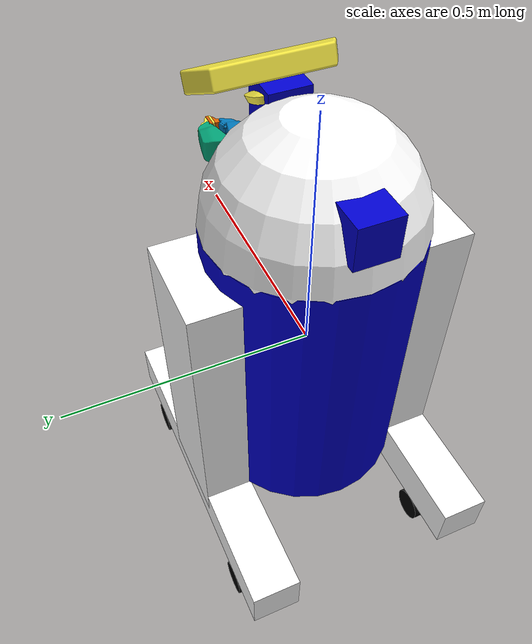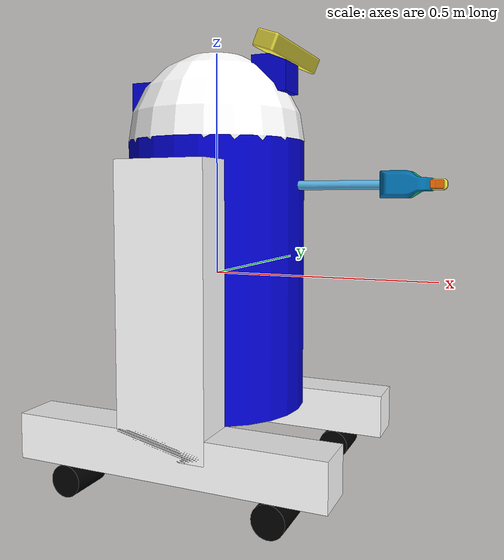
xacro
<?xml version="1.0"?>
<robot name="r2d2" xmlns:xacro="http://ros.org/wiki/xacro">

  <xacro:property name="width" value=".2" />
  <xacro:property name="leglen" value=".6" />
  <xacro:property name="polelen" value=".2" />
  <xacro:property name="bodylen" value=".6" />
  <xacro:property name="baselen" value=".7" />
  <xacro:property name="wheeldiam" value=".07" />
  <xacro:property name="pi" value="3.1415" />

  <material name="blue">
    <color rgba="0 0 .8 1"/>
  </material>

  <material name="black">
    <color rgba="0 0 0 1"/>
  </material>

  <material name="white">
    <color rgba="1 1 1 1"/>
  </material>

  <xacro:macro name="default_inertial" params="mass">
    <inertial>
      <mass value="${mass}" />
      <inertia ixx="1.0" ixy="0.0" ixz="0.0" iyy="1.0" iyz="0.0" izz="1.0" />
    </inertial>
  </xacro:macro>

  <link name="base_link">
    <visual>
      <geometry>
        <cylinder radius="${width}" length="${bodylen}"/>
      </geometry>
      <material name="blue"/>
    </visual>
    <collision>
      <geometry>
        <cylinder radius="${width}" length="${bodylen}"/>
      </geometry>
    </collision>
    <xacro:default_inertial mass="10"/>
  </link>
  <gazebo reference="base_link">
    <material>Gazebo/Blue</material>
  </gazebo>

  <xacro:macro name="wheel" params="prefix suffix reflect">

    <link name="${prefix}_${suffix}_wheel">
      <visual>
        <origin xyz="0 0 0" rpy="${pi/2} 0 0" />
        <geometry>
          <cylinder radius="${wheeldiam/2}" length="0.1"/>
        </geometry>
        <material name="black"/>
        <origin xyz="0 0 0" rpy="0 0 0" />
      </visual>
      <collision>
        <origin xyz="0 0 0" rpy="${pi/2} 0 0" />
        <geometry>
          <cylinder radius="${wheeldiam/2}" length="0.1"/>
        </geometry>
        <origin xyz="0 0 0" rpy="0 0 0" />
      </collision>
      <xacro:default_inertial mass="1"/>
    </link>
    <joint name="${prefix}_${suffix}_wheel_joint" type="continuous">
      <axis xyz="0 1 0" rpy="0 0 0" />
      <parent link="${prefix}_base"/>
      <child link="${prefix}_${suffix}_wheel"/>
      <origin xyz="${baselen*reflect/3} 0 -${wheeldiam/2+.05}" rpy="0 0 0"/>
    </joint>

    <!-- This block provides the simulator (Gazebo) with information on a few additional
    physical properties. See http://gazebosim.org/tutorials/?tut=ros_urdf for more-->
    <gazebo reference="${prefix}_${suffix}_wheel">
      <mu1 value="200.0"/>
      <mu2 value="100.0"/>
      <kp value="10000000.0" />
      <kd value="1.0" />
      <material>Gazebo/Grey</material>
    </gazebo>

    <!-- This block connects the wheel joint to an actuator (motor), which informs both
    simulation and visualization of the robot -->
    <transmission name="${prefix}_${suffix}_wheel_trans" type="SimpleTransmission">
      <type>transmission_interface/SimpleTransmission</type>
      <actuator name="${prefix}_${suffix}_wheel_motor">
        <mechanicalReduction>1</mechanicalReduction>
      </actuator>
      <joint name="${prefix}_${suffix}_wheel_joint">
        <hardwareInterface>VelocityJointInterface</hardwareInterface>
      </joint>
    </transmission>

  </xacro:macro>

  <xacro:macro name="leg" params="prefix reflect">
    <link name="${prefix}_leg">
      <visual>
        <geometry>
          <box size="${leglen} .1 .2"/>
        </geometry>
        <origin xyz="0 0 -${leglen/2}" rpy="0 ${pi/2} 0"/>
        <material name="white"/>
      </visual>
      <collision>
        <geometry>
          <box size="${leglen} .1 .2"/>
        </geometry>
        <origin xyz="0 0 -${leglen/2}" rpy="0 ${pi/2} 0"/>
      </collision>
      <xacro:default_inertial mass="10"/>
    </link>
    <gazebo reference="${prefix}_leg">
      <material>Gazebo/White</material>
    </gazebo>

    <joint name="base_to_${prefix}_leg" type="fixed">
      <parent link="base_link"/>
      <child link="${prefix}_leg"/>
      <origin xyz="0 ${reflect*(width+.02)} .25" />
    </joint>

    <link name="${prefix}_base">
      <visual>
        <geometry>
          <box size="${baselen} .1 .1"/>
        </geometry>
        <material name="white"/>
      </visual>
      <collision>
        <geometry>
          <box size="${baselen} .1 .1"/>
        </geometry>
      </collision>
      <xacro:default_inertial mass="10"/>
    </link>
    <gazebo reference="${prefix}_base">
      <material>Gazebo/White</material>
    </gazebo>

    <joint name="${prefix}_base_joint" type="fixed">
      <parent link="${prefix}_leg"/>
      <child link="${prefix}_base"/>
      <origin xyz="0 0 ${-leglen}" />
    </joint>
    <xacro:wheel prefix="${prefix}" suffix="front" reflect="1"/>
    <xacro:wheel prefix="${prefix}" suffix="back" reflect="-1"/>
  </xacro:macro>
  <xacro:leg prefix="right" reflect="-1" />
  <xacro:leg prefix="left" reflect="1" />

  <joint name="gripper_extension" type="prismatic">
    <parent link="base_link"/>
    <child link="gripper_pole"/>
    <limit effort="1000.0" lower="-${width*2-.02}" upper="0" velocity="0.5"/>
    <origin rpy="0 0 0" xyz="${width-.01} 0 .2"/>
    <limit effort="30" velocity="0.2"/>
    <dynamics damping="0.0" friction="0.0"/>
  </joint>

  <link name="gripper_pole">
    <visual>
      <geometry>
        <cylinder length="${polelen}" radius=".01"/>
      </geometry>
      <origin xyz="${polelen/2} 0 0" rpy="0 ${pi/2} 0 "/>
    </visual>
    <collision>
      <geometry>
        <cylinder length="${polelen}" radius=".01"/>
      </geometry>
      <origin xyz="${polelen/2} 0 0" rpy="0 ${pi/2} 0 "/>
    </collision>
    <xacro:default_inertial mass=".05"/>
  </link>

  <transmission name="gripper_extension_trans" type="SimpleTransmission">
    <type>transmission_interface/SimpleTransmission</type>
    <actuator name="gripper_extension_motor">
      <mechanicalReduction>1</mechanicalReduction>
    </actuator>
    <joint name="gripper_extension">
      <hardwareInterface>PositionJointInterface</hardwareInterface>
    </joint>
  </transmission>

  <xacro:macro name="gripper" params="prefix reflect">
    <joint name="${prefix}_gripper_joint" type="revolute">
      <axis xyz="0 0 ${reflect}"/>
      <limit effort="1000.0" lower="0.0" upper="0.548" velocity="0.5"/>
      <origin rpy="0 0 0" xyz="${polelen} ${reflect*0.01} 0"/>
      <parent link="gripper_pole"/>
      <child link="${prefix}_gripper"/>
      <limit effort="30" velocity="1.0"/>
      <dynamics damping="0.0" friction="0.0"/>
    </joint>
    <link name="${prefix}_gripper">
      <visual>
        <origin rpy="${(reflect-1)/2*pi} 0 0" xyz="0 0 0"/>
        <geometry>
          <mesh filename="package://pr2_description/meshes/gripper_v0/l_finger.dae"/>
        </geometry>
      </visual>
      <collision>
        <geometry>
          <mesh filename="package://pr2_description/meshes/gripper_v0/l_finger.dae"/>
        </geometry>
        <origin rpy="${(reflect-1)/2*pi} 0 0" xyz="0 0 0"/>
      </collision>
      <xacro:default_inertial mass=".05"/>
    </link>
    <transmission name="${prefix}_gripper_trans" type="SimpleTransmission">
      <type>transmission_interface/SimpleTransmission</type>
      <actuator name="${prefix}_gripper_motor">
        <mechanicalReduction>1</mechanicalReduction>
      </actuator>
      <joint name="${prefix}_gripper_joint">
        <hardwareInterface>PositionJointInterface</hardwareInterface>
      </joint>
    </transmission>

    <joint name="${prefix}_tip_joint" type="fixed">
      <parent link="${prefix}_gripper"/>
      <child link="${prefix}_tip"/>
    </joint>
    <link name="${prefix}_tip">
      <visual>
        <origin rpy="${(reflect-1)/2*pi} 0 0" xyz="0.09137 0.00495 0"/>
        <geometry>
          <mesh filename="package://pr2_description/meshes/gripper_v0/l_finger_tip.dae"/>
        </geometry>
      </visual>
      <collision>
        <geometry>
          <mesh filename="package://pr2_description/meshes/gripper_v0/l_finger_tip.dae"/>
        </geometry>
        <origin rpy="${(reflect-1)/2*pi} 0 0" xyz="0.09137 0.00495 0"/>
      </collision>
      <xacro:default_inertial mass=".05"/>
    </link>
  </xacro:macro>

  <xacro:gripper prefix="left" reflect="1" />
  <xacro:gripper prefix="right" reflect="-1" />

  <link name="head">
    <visual>
      <geometry>
        <sphere radius="${width}"/>
      </geometry>
      <material name="white"/>
    </visual>
    <collision>
      <geometry>
        <sphere radius="${width}"/>
      </geometry>
    </collision>
    <xacro:default_inertial mass="2"/>
  </link>
  <gazebo reference="head">
    <material>Gazebo/White</material>
  </gazebo>

  <joint name="head_swivel" type="continuous">
    <parent link="base_link"/>
    <child link="head"/>
    <axis xyz="0 0 1"/>
    <origin xyz="0 0 ${bodylen/2}"/>
    <limit effort="30" velocity="1.0"/>
    <dynamics damping="0.0" friction="0.0"/>
  </joint>

  <!-- This block connects the head_swivel joint to an actuator (motor), which informs both
  simulation and visualization of the robot -->
  <transmission name="head_swivel_trans" type="SimpleTransmission">
    <type>transmission_interface/SimpleTransmission</type>
    <actuator name="$head_swivel_motor">
      <mechanicalReduction>1</mechanicalReduction>
    </actuator>
    <joint name="head_swivel">
      <hardwareInterface>PositionJointInterface</hardwareInterface>
    </joint>
  </transmission>

  <link name="box">
    <visual>
      <geometry>
        <box size=".08 .08 .08"/>
      </geometry>
      <material name="blue"/>
      <origin xyz="-0.04 0 0"/>
    </visual>
    <collision>
      <geometry>
        <box size=".08 .08 .08"/>
      </geometry>
    </collision>
    <xacro:default_inertial mass="1"/>
  </link>
  <gazebo reference="box">
    <material>Gazebo/Blue</material>
  </gazebo>

  <joint name="tobox" type="fixed">
    <parent link="head"/>
    <child link="box"/>
    <origin xyz="${.707*width+0.04} 0 ${.707*width}"/>
  </joint>

  <link name="front_kinect">
    <xacro:default_inertial mass="0"/>
  </link>

  <gazebo reference="front_kinect">
    <material>Gazebo/Black</material>
  </gazebo>

  <joint name="tokinect" type="fixed">
    <parent link="box"/>
    <child link="front_kinect"/>
    <origin rpy="0 0.4 0" xyz="0.01 0 0.04"/>  <!--change the middle number of the rpy on this line to adjust kinect pitch -->
  </joint>

  <xacro:property name="M_PI" value="3.1415926535897931" />
  <xacro:property name="kinect_cam_py" value="-0.0125"/>
  <joint name="camera_rgb_joint" type="fixed">
    <origin xyz="0 0 0" rpy="0 0 0"/>
    <parent link="front_kinect"/>
    <child link="camera_rgb_frame" />
  </joint>
  <link name="camera_rgb_frame"/>
  <joint name="camera_rgb_optical_joint" type="fixed">
    <origin xyz="0 0 0" rpy="${-M_PI/2} 0 ${-M_PI/2}" />
    <parent link="camera_rgb_frame" />
    <child link="camera_rgb_optical_frame" />
  </joint>
  <link name="camera_rgb_optical_frame"/>
  <joint name="camera_joint" type="fixed">
    <origin xyz="-0.031 ${-kinect_cam_py} -0.016" rpy="0 0 0"/>
    <parent link="camera_rgb_frame"/>
    <child link="camera_link"/>
  </joint>
  <link name="camera_link">
    <visual>
      <origin xyz="0 0 0" rpy="0 0 ${M_PI/2}"/>
      <geometry>
        <mesh filename="package://turtlebot_description/meshes/sensors/kinect.dae"/>
      </geometry>
    </visual>
    <collision>
      <origin xyz="0.0 0.0 0.0" rpy="0 0 0"/>
      <geometry>
        <box size="0.07271 0.27794 0.073"/>
      </geometry>
    </collision>
    <inertial>
      <mass value="0.564" />
      <origin xyz="0 0 0" />
      <inertia ixx="0.003881243" ixy="0.0" ixz="0.0"
               iyy="0.000498940" iyz="0.0"
               izz="0.003879257" />
    </inertial>
  </link>
  <joint name="camera_depth_joint" type="fixed">
    <origin xyz="0 ${2 * -kinect_cam_py} 0" rpy="0 0 0" />
    <parent link="camera_rgb_frame" />
    <child link="camera_depth_frame" />
  </joint>
  <link name="camera_depth_frame"/>
  <joint name="camera_depth_optical_joint" type="fixed">
    <origin xyz="0 0 0" rpy="${-M_PI/2} 0 ${-M_PI/2}" />
    <parent link="camera_depth_frame" />
    <child link="camera_depth_optical_frame" />
  </joint>
  <link name="camera_depth_optical_frame"/>
  <gazebo reference="camera_link">
    <sensor type="depth" name="camera">
      <always_on>true</always_on>
      <update_rate>20.0</update_rate>
      <camera>
        <horizontal_fov>${60.0*M_PI/180.0}</horizontal_fov>
        <image>
          <format>R8G8B8</format>
          <width>640</width>
          <height>480</height>
        </image>
        <clip>
          <near>0.05</near>
          <far>8.0</far>
        </clip>
      </camera>
      <plugin name="kinect_camera_controller" filename="libgazebo_ros_openni_kinect.so">
        <cameraName>camera</cameraName>
        <alwaysOn>true</alwaysOn>
        <updateRate>10</updateRate>
        <imageTopicName>rgb/image_raw</imageTopicName>
        <depthImageTopicName>depth/image_raw</depthImageTopicName>
        <pointCloudTopicName>depth/points</pointCloudTopicName>
        <cameraInfoTopicName>rgb/camera_info</cameraInfoTopicName>
        <depthImageCameraInfoTopicName>depth/camera_info</depthImageCameraInfoTopicName>
        <frameName>camera_depth_optical_frame</frameName>
        <baseline>0.1</baseline>
        <distortion_k1>0.0</distortion_k1>
        <distortion_k2>0.0</distortion_k2>
        <distortion_k3>0.0</distortion_k3>
        <distortion_t1>0.0</distortion_t1>
        <distortion_t2>0.0</distortion_t2>
        <pointCloudCutoff>0.4</pointCloudCutoff>
      </plugin>
    </sensor>
  </gazebo>

  <link name="box2">
    <visual>
      <geometry>
        <box size=".08 .08 .08"/>
      </geometry>
      <material name="blue"/>
      <origin xyz="-0.04 0 0"/>
    </visual>
    <collision>
      <geometry>
        <box size=".08 .08 .08"/>
      </geometry>
    </collision>
    <inertial>
      <mass value="1"/>
      <inertia ixx="1.0" ixy="0.0" ixz="0.0" iyy="1.0" iyz="0.0" izz="1.0"/>
    </inertial>
  </link>
  <gazebo reference="box2">
    <material>Gazebo/Blue</material>
  </gazebo>
  <joint name="tobox2" type="fixed">
    <parent link="head"/>
    <child link="box2"/>
    <origin xyz="-0.12 0 0.10"/>
  </joint>
  <link name="invisibleBox">
    <visual>
      <geometry>
        <box size="0 0 0"/>
      </geometry>
      <origin xyz="-0.04 0 0"/>
    </visual>
    <collision>
      <geometry>
        <box size="0 0 0"/>
      </geometry>
    </collision>
    <inertial>
      <mass value="0"/>
      <inertia ixx="1.0" ixy="0.0" ixz="0.0" iyy="1.0" iyz="0.0" izz="1.0"/>
    </inertial>
  </link>
  <joint name="toboxInvisible" type="fixed">
    <parent link="box2"/>
    <child link="invisibleBox"/>
    <origin xyz="-0.08 0 0.04" rpy="0  0 3.14" />
  </joint>
  <!-- hokuyo -->
  <gazebo reference="invisibleBox">
    <sensor type="ray" name="head_hokuyo_sensor">
      <pose>0 0 0 0 0 0</pose>
      <visualize>true</visualize>
      <update_rate>40</update_rate>
      <ray>
        <scan>
          <horizontal>
            <samples>720</samples>
            <resolution>1</resolution>
            <min_angle>-1.75</min_angle>
            <max_angle>1.75</max_angle>
          </horizontal>
        </scan>
        <range>
          <min>0.10</min>
          <max>50.0</max>
          <resolution>0.01</resolution>
        </range>
        <noise>
          <type>gaussian</type>
          <mean>0.0</mean>
          <stddev>0.01</stddev>
        </noise>
      </ray>
      <plugin name="gazebo_ros_head_hokuyo_controller" filename="libgazebo_ros_laser.so">
        <topicName>scan</topicName>
        <frameName>invisibleBox</frameName>
      </plugin>
    </sensor>
  </gazebo>

  <!-- Gazebo plugin for ROS Control -->
  <gazebo>
    <plugin name="gazebo_ros_control" filename="libgazebo_ros_control.so">
      <robotNamespace>/</robotNamespace>
    </plugin>
  </gazebo>

</robot>
